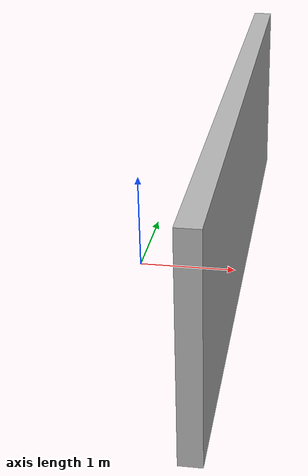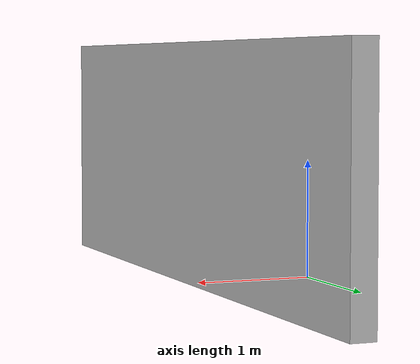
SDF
<?xml version="1.0" ?>
<sdf version="1.6">
  <model name="wall_obstacle">
    <static>true</static>
    <pose>1.0 0 1.0 0 0 0</pose>
    <link name="link">
      <collision name="collision">
        <geometry>
          <box>
            <size>0.2 6.0 2.0</size>
          </box>
        </geometry>
      </collision>
      <visual name="visual">
        <geometry>
          <box>
            <size>0.2 6.0 2.0</size>
          </box>
        </geometry>
      </visual>
    </link>
  </model>
</sdf>
